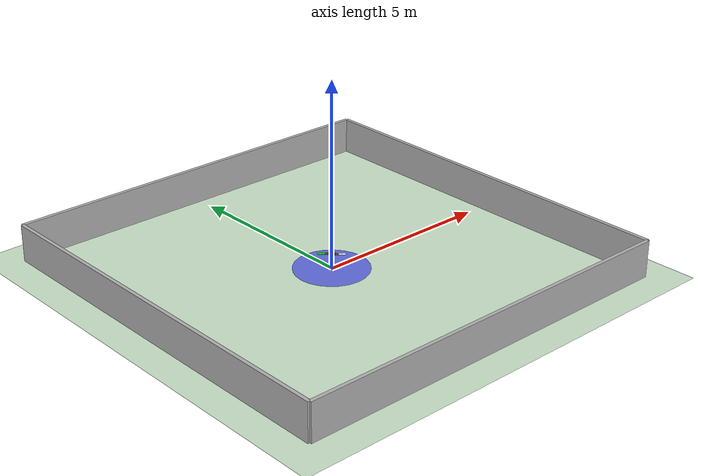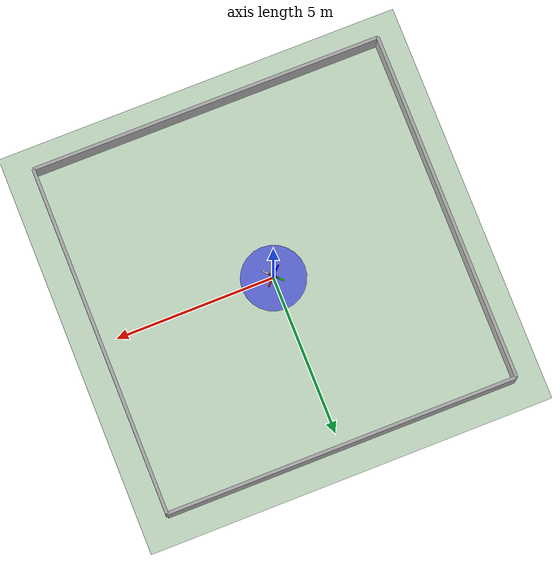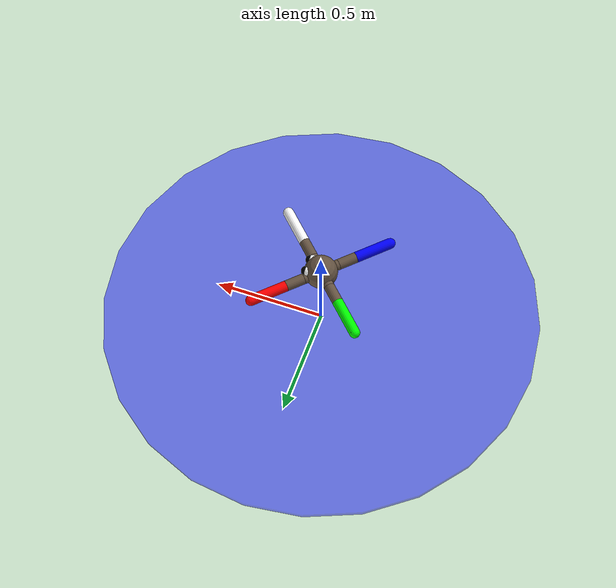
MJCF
<mujoco model="ant">
  <compiler angle="radian" inertiafromgeom="true" autolimits="true"/>
  <option timestep="0.001" integrator="implicitfast">
  </option>
  <default>
    <joint limited="true" frictionloss="0.05"/>
    <geom friction="0.6 0.03 0.05" rgba="0.4 0.33 0.26 1.0" solref="0.02 1.5" solimp="0.7 0.9 0.02"/>

  </default>
  <asset>
    <texture builtin="gradient" height="100" rgb1="1 1 1" rgb2="0 0 0" type="skybox" width="100"/>
    <texture builtin="flat" height="1278" mark="cross" markrgb="1 1 1" name="texgeom" random="0.01" rgb1="0.8 0.6 0.4" rgb2="0.8 0.6 0.4" type="cube" width="127"/>
    <texture builtin="checker" height="100" name="texplane" rgb1="0 0 0" rgb2="0.1 0.1 0.1" type="2d" width="100"/>
    <material name="MatPlane" texrepeat="60 60" texture="texplane"/>
    <material name="geom" texture="texgeom" texuniform="true"/>
  </asset>
  <sensor>
    <gyro name="gyro" site="imu_location" />
    <accelerometer name="accelerometer" site="imu_location" />
    <framezaxis objtype="site" objname="imu_location" name="upvector"/>

  </sensor>

   <worldbody>
    <light cutoff="100" diffuse="1 1 1" dir="-0 0 -1.3" directional="true" exponent="1" pos="0 0 1.3" specular=".1 .1 .1"/>
    <geom conaffinity="1" condim="3" material="MatPlane" name="floor" pos="0 0 0" rgba="0.8 0.9 0.8 1" size="40 40 40" type="plane" friction="0.6"/>
    <!-- 3D Axis Markers as Cylinders (X: red, Y: green, Z: blue) -->
    <geom name="x_axis" type="cylinder" fromto="0 0 0 0.3 0 0" size="0.01" rgba="1 0 0 1" contype="0" conaffinity="0"/>
    <geom name="y_axis" type="cylinder" fromto="0 0 0 0 0.3 0" size="0.01" rgba="0 1 0 1" contype="0" conaffinity="0"/>
    <geom name="z_axis" type="cylinder" fromto="0 0 0 0 0 0.3" size="0.01" rgba="0 0 1 1" contype="0" conaffinity="0"/>

    <!-- Arena boundary walls -->
    <geom name="north_wall" type="box" pos="0 5.5 0.5" size="5.5 0.05 0.5" rgba="0.7 0.7 0.7 1"/>
    <geom name="south_wall" type="box" pos="0 -5.5 0.5" size="5.5 0.05 0.5" rgba="0.7 0.7 0.7 1"/>
    <geom name="east_wall" type="box" pos="5.5 0 0.5" size="0.05 5.5 0.5" rgba="0.7 0.7 0.7 1"/>
    <geom name="west_wall" type="box" pos="-5.5 0 0.5" size="0.05 5.5 0.5" rgba="0.7 0.7 0.7 1"/>

    <geom name="boundary" type="cylinder" pos="0 0 0.01" size="1 0.01" rgba="0 0 1 0.5" contype="0" conaffinity="0"/>

    <body name="torso" pos="0 0 0.4">
      <camera name="track" mode="trackcom" pos="0 -4.0 0.6" xyaxes="1 0 0 0 0 1"/>
      <geom name="torso_geom" pos="0 0 0" size="0.075" type="sphere" mass="0.324"/>
      <joint armature="0" damping="0" limited="false" margin="0.01" name="root" pos="0 0 0" type="free"/>
      <site name="imu_location" pos="0 0 0" euler="0 0 0" size="0.01" type="sphere" rgba="1 0 0 1"/>
      <site name="left_eye" pos="0.05 0.03 0.02" size="0.025" type="sphere" rgba="1 1 1 1"/>
      <site name="right_eye" pos="0.05 -0.03 0.02" size="0.025" type="sphere" rgba="1 1 1 1"/>
      <site name="left_pupil" pos="0.06 0.03 0.02" size="0.022" type="sphere" rgba="0 0 0 1"/>
      <site name="right_pupil" pos="0.06 -0.03 0.02" size="0.022" type="sphere" rgba="0 0 0 1"/>

      <body name="rear_right_leg" pos="0 0 0">
        <geom fromto="0.0 0.0 0.0 -0.06 -0.06 0.0" name="rear_right_leg_geom" size="0.024" type="capsule" mass="0.082"/>
        <body name="aux_3" pos="-0.06 -0.06 0">
          <joint axis="0 0 1" name="hip_rr" pos="0.0 0.0 0.0" range="-0.785 0.785" type="hinge" damping="0.235"/>
          <geom fromto="0.0 0.0 0.0 -0.06 -0.06 0.0" name="rear_right_upper_leg_geom" size="0.024" type="capsule" mass="0.099"/>
          <body pos="-0.06 -0.06 0">
            <joint axis="-1 1 0" name="knee_rr" pos="0.0 0.0 0.0" range="-1.22 1.22" type="hinge" damping="0.852"/>
            <geom fromto="0.0 0.0 0.0 -0.12 -0.12 0.0" name="rear_right_lower_leg_geom" size="0.024" type="capsule" mass="0.030" rgba="0 0 1 1"/>
          </body>
        </body>
      </body>

      <body name="front_right_leg" pos="0 0 0">
        <geom fromto="0.0 0.0 0.0 0.06 -0.06 0.0" name="front_right_leg_geom" size="0.024" type="capsule" mass="0.082"/>
        <body name="aux_4" pos="0.06 -0.06 0">
          <joint axis="0 0 1" name="hip_fr" pos="0.0 0.0 0.0" range="-0.785 0.785" type="hinge" damping="0.235"/>
          <geom fromto="0.0 0.0 0.0 0.06 -0.06 0.0" name="front_right_upper_leg_geom" size="0.024" type="capsule" mass="0.099"/>
          <body pos="0.06 -0.06 0">
            <joint axis="-1 -1 0" name="knee_fr" pos="0.0 0.0 0.0" range="-1.22 1.22" type="hinge" damping="0.852"/>
            <geom fromto="0.0 0.0 0.0 0.12 -0.12 0.0" name="front_right_lower_leg_geom" size="0.024" type="capsule" mass="0.030" rgba="1 1 1 1"/>
          </body>
        </body>
      </body>

      <body name="front_left_leg" pos="0 0 0">
        <geom fromto="0.0 0.0 0.0 0.06 0.06 0.0" name="front_left_leg_geom" size="0.024" type="capsule" mass="0.082"/>
        <body name="aux_1" pos="0.06 0.06 0">
          <joint axis="0 0 1" name="hip_fl" pos="0.0 0.0 0.0" range="-0.785 0.785" type="hinge" damping="0.235"/>
          <geom fromto="0.0 0.0 0.0 0.06 0.06 0.0" name="front_left_upper_leg_geom" size="0.024" type="capsule" mass="0.099"/>
          <body pos="0.06 0.06 0">
            <joint axis="1 -1 0" name="knee_fl" pos="0.0 0.0 0.0" range="-1.22 1.22" type="hinge" damping="0.852"/>
            <geom fromto="0.0 0.0 0.0 0.12 0.12 0.0" name="front_left_lower_leg_geom" size="0.024" type="capsule" mass="0.030" rgba="1 0 0 1"/>
          </body>
        </body>
      </body>

      <body name="rear_left_leg" pos="0 0 0">
        <geom fromto="0.0 0.0 0.0 -0.06 0.06 0.0" name="rear_left_leg_geom" size="0.024" type="capsule" mass="0.082"/>
        <body name="aux_2" pos="-0.06 0.06 0">
          <joint axis="0 0 1" name="hip_rl" pos="0.0 0.0 0.0" range="-0.785 0.785" type="hinge" damping="0.235"/>
          <geom fromto="0.0 0.0 0.0 -0.06 0.06 0.0" name="rear_leg_upper_leg_geom" size="0.024" type="capsule" mass="0.099"/>
          <body pos="-0.06 0.06 0">
            <joint axis="1 1 0" name="knee_rl" pos="0.0 0.0 0.0" range="-1.22 1.22" type="hinge" damping="0.852"/>
            <geom fromto="0.0 0.0 0.0 -0.12 0.12 0.0" name="rear_left_lower_leg_geom" size="0.024" type="capsule" mass="0.030" rgba="0 1 0 1"/>
          </body>
        </body>
      </body>

    </body>
  </worldbody>

  <!-- From measurement: -->
    <actuator>
    <position joint="hip_rr" kp="19.455" kv="2.5" timeconst="0.12" forcelimited="true" forcerange="-1.4 1.4"/>
    <position joint="knee_rr" kp="18.638" kv="1.5" timeconst="0.12" forcelimited="true" forcerange="-4.1 4.1"/>
    <position joint="hip_fr" kp="19.455" kv="2.5" timeconst="0.12" forcelimited="true" forcerange="-1.4 1.4"/>
    <position joint="knee_fr" kp="18.638" kv="1.5" timeconst="0.12" forcelimited="true" forcerange="-4.1 4.1"/>
    <position joint="hip_fl" kp="19.455" kv="2.5" timeconst="0.12" forcelimited="true" forcerange="-1.4 1.4"/>
    <position joint="knee_fl" kp="18.638" kv="1.5" timeconst="0.12" forcelimited="true" forcerange="-4.1 4.1"/>
    <position joint="hip_rl" kp="19.455" kv="2.5" timeconst="0.12" forcelimited="true" forcerange="-1.4 1.4"/>
    <position joint="knee_rl" kp="18.638" kv="1.5" timeconst="0.12" forcelimited="true" forcerange="-4.1 4.1"/>
  </actuator>

</mujoco>
